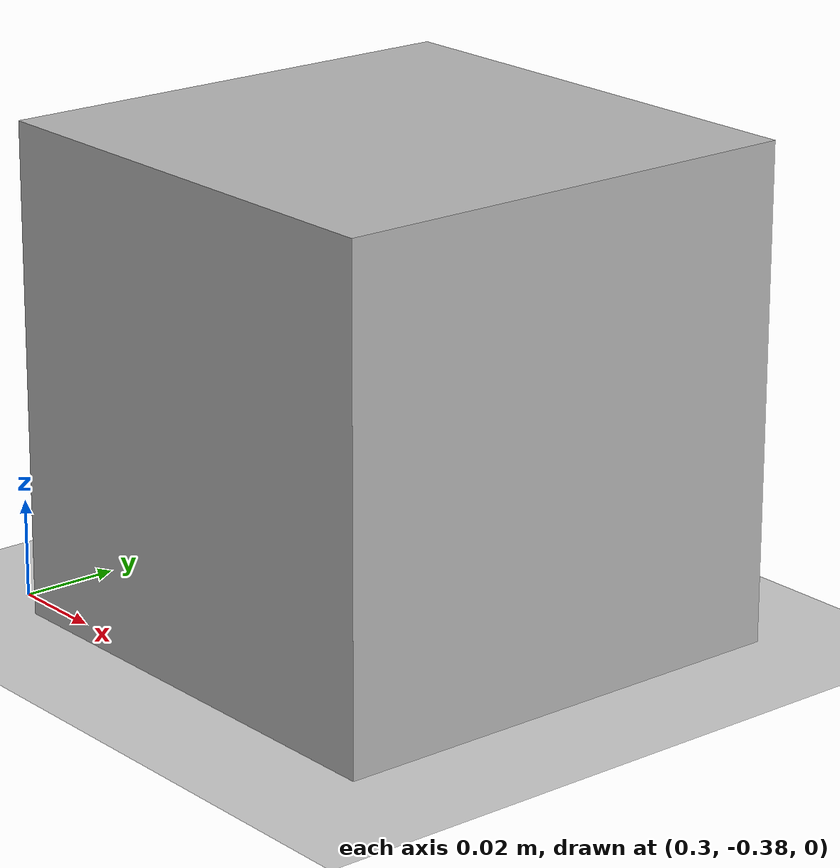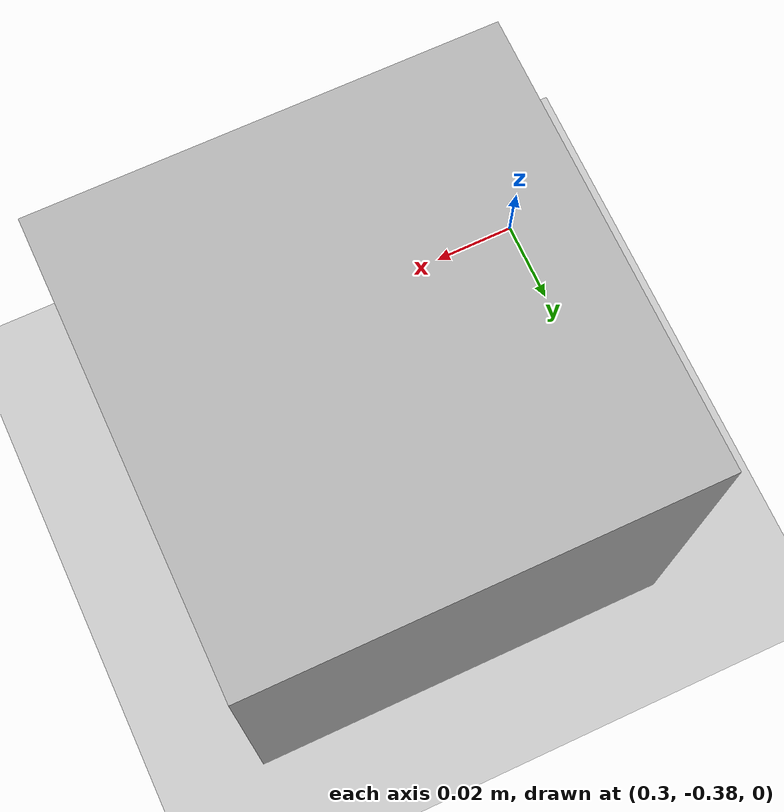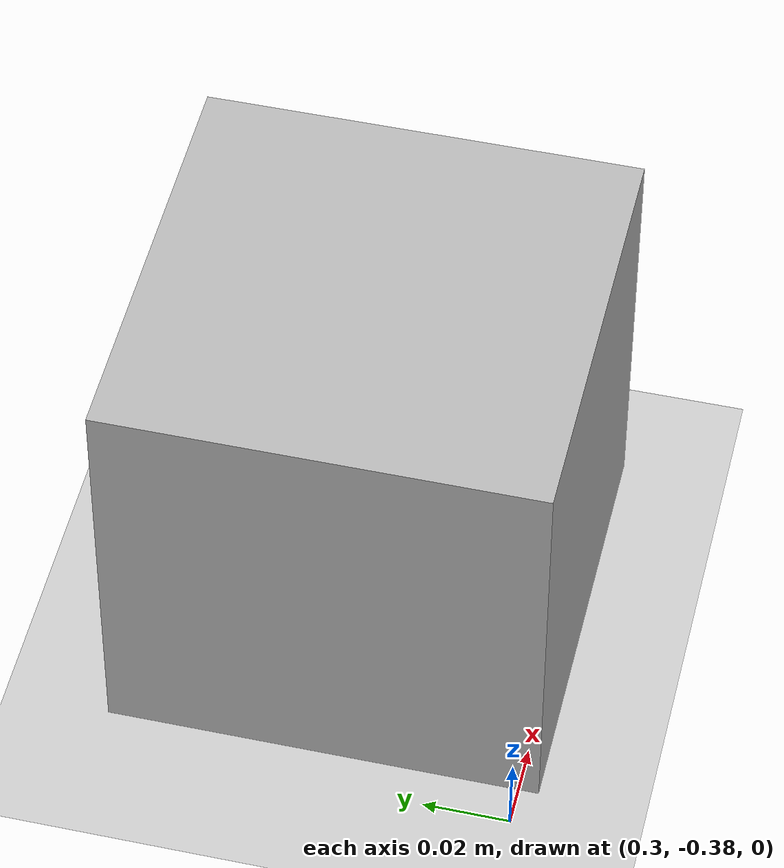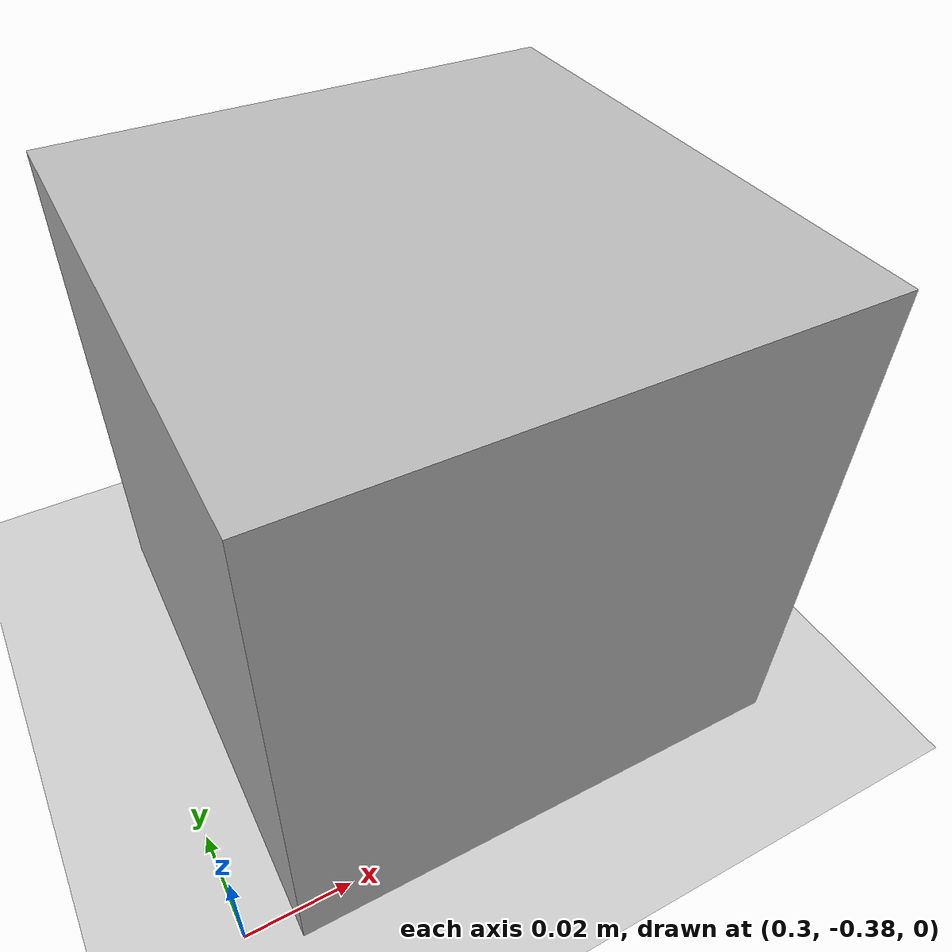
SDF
<sdf version="1.6">
 <world name="default">
  <light name="sun" type="directional">
   <pose>0 0 10 0 -0 0</pose>
   <diffuse>0.8 0.8 0.8 1</diffuse>
   <specular>0.2 0.2 0.2 1</specular>
   <attenuation>
    <range>1000</range>
    <constant>0.9</constant>
    <linear>0.01</linear>
    <quadratic>0.001</quadratic>
   </attenuation>
   <direction>-0.5 0.1 -0.9</direction>
  </light>
  <model name="ground_plane">
   <static>1</static>
   <link name="link">
    <collision name="collision">
     <geometry><plane><normal>0 0 1</normal><size>100 100</size></plane></geometry>
     <surface>
      <contact><collide_bitmask>65535</collide_bitmask></contact>
      <friction><ode><mu>100</mu><mu2>50</mu2></ode></friction>
     </surface>
    </collision>
    <visual name="visual">
     <cast_shadows>0</cast_shadows>
     <geometry><plane><normal>0 0 1</normal><size>100 100</size></plane></geometry>
     <material>
      <script><uri>file://media/materials/scripts/gazebo.material</uri><name>Gazebo/Grey</name></script>
     </material>
    </visual>
   </link>
  </model>
  <gravity>0 0 -9.8</gravity>
  <magnetic_field>6e-06 2.3e-05 -4.2e-05</magnetic_field>
  <atmosphere type="adiabatic"/>
  <physics name="default_physics" default="0" type="ode">
   <max_step_size>0.001</max_step_size>
   <real_time_factor>1</real_time_factor>
   <real_time_update_rate>1000</real_time_update_rate>
  </physics>
  <scene><ambient>0.4 0.4 0.4 1</ambient><background>0.7 0.7 0.7 1</background><shadows>1</shadows></scene>
  <audio><device>default</device></audio>
  <spherical_coordinates>
   <surface_model>EARTH_WGS84</surface_model>
   <latitude_deg>0</latitude_deg>
   <longitude_deg>0</longitude_deg>
   <elevation>0</elevation>
   <heading_deg>0</heading_deg>
  </spherical_coordinates>
  <model name="distorted_camera">
   <link name="link">
    <gravity>0</gravity>
    <pose>0.05 0.05 0.05 0 -0 0</pose>
    <inertial>
     <mass>0.1</mass>
     <inertia>
      <ixx>0.000166667</ixx>
      <iyy>0.000166667</iyy>
      <izz>0.000166667</izz>
      <ixy>0</ixy>
      <ixz>0</ixz>
      <iyz>0</iyz>
     </inertia>
    </inertial>
    <collision name="collision"><geometry><box><size>0.1 0.1 0.1</size></box></geometry></collision>
    <visual name="visual"><geometry><box><size>0.1 0.1 0.1</size></box></geometry></visual>
    <sensor name="camera" type="camera">
     <camera name="__default__">
      <horizontal_fov>1.047</horizontal_fov>
      <image><width>320</width><height>240</height></image>
      <clip><near>0.1</near><far>100</far></clip>
      <noise><type>gaussian</type><mean>0</mean><stddev>0.1</stddev></noise>
      <distortion>
       <k1>-0.25</k1>
       <k2>0.12</k2>
       <k3>0</k3>
       <p1>-0.00028</p1>
       <p2>-5e-05</p2>
       <center>0.5 0.5</center>
      </distortion>
     </camera>
     <always_on>1</always_on>
     <update_rate>30</update_rate>
     <visualize>1</visualize>
    </sensor>
   </link>
   <pose>0.309018 -0.384538 0 0 -0 0</pose>
  </model>
 </world>
</sdf>
